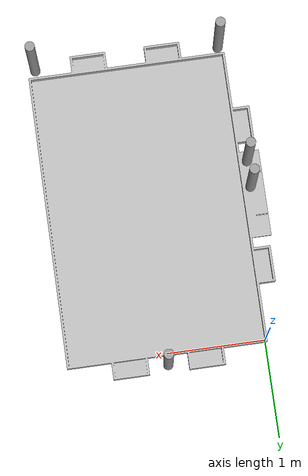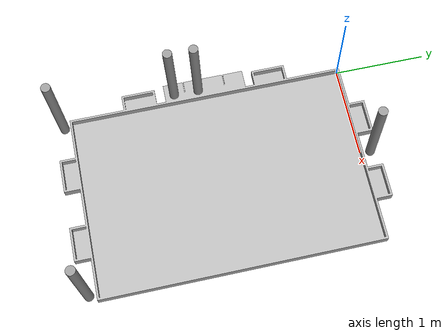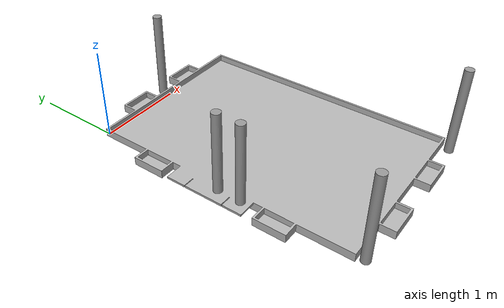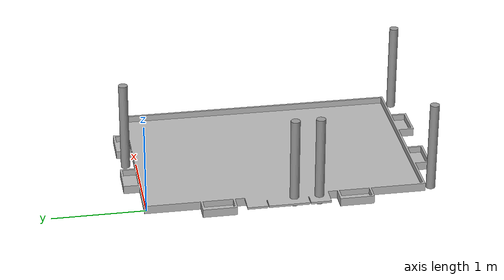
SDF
<sdf version="1.7">
 <world name="default">
  <light name="sun" type="directional">
   <pose>0 0 10 0 -0 0</pose>
   <diffuse>0.8 0.8 0.8 1</diffuse>
   <specular>0.2 0.2 0.2 1</specular>
   <attenuation>
    <range>1000</range>
    <constant>0.9</constant>
    <linear>0.01</linear>
    <quadratic>0.001</quadratic>
   </attenuation>
   <direction>-0.5 0.1 -0.9</direction>
   <spot><inner_angle>0</inner_angle><outer_angle>0</outer_angle><falloff>0</falloff></spot>
  </light>
  <gravity>0 0 -9.8</gravity>
  <magnetic_field>6e-06 2.3e-05 -4.2e-05</magnetic_field>
  <atmosphere type="adiabatic"/>
  <physics type="ode">
   <max_step_size>0.001</max_step_size>
   <real_time_factor>1</real_time_factor>
   <real_time_update_rate>1000</real_time_update_rate>
  </physics>
  <scene><ambient>0.4 0.4 0.4 1</ambient><background>0.7 0.7 0.7 1</background><shadows>1</shadows></scene>
  <audio><device>default</device></audio>
  <spherical_coordinates>
   <surface_model>EARTH_WGS84</surface_model>
   <latitude_deg>0</latitude_deg>
   <longitude_deg>0</longitude_deg>
   <elevation>0</elevation>
   <heading_deg>0</heading_deg>
  </spherical_coordinates>
  <model name="Table_2024">
   <static>1</static>
   <link name="link_0">
    <gravity>0</gravity>
    <inertial>
     <inertia>
      <ixx>0.166667</ixx>
      <ixy>0</ixy>
      <ixz>0</ixz>
      <iyy>0.166667</iyy>
      <iyz>0</iyz>
      <izz>0.166667</izz>
     </inertia>
    </inertial>
    <pose>-1 -1 0 0 -0 0</pose>
    <visual name="visual">
     <geometry><mesh><uri>model://Table2024/table2024.dae</uri><scale>1 1 1</scale></mesh></geometry>
     <material>
      <lighting>1</lighting>
      <script>
       <uri>model://Table2024/materials/scripts</uri>
       <uri>model://Table2024/materials/textures</uri>
       <name>tableMat/Diffuse</name>
       <name>Gazebo/Grey</name>
      </script>
      <shader type="pixel"/>
     </material>
    </visual>
    <collision name="collision">
     <geometry><mesh><uri>model://Table2024/table2024.dae</uri><scale>1 1 1</scale></mesh></geometry>
     <surface>
      <friction>
       <ode><mu>1</mu><mu2>1</mu2><fdir1>0 0 0</fdir1><slip1>0</slip1><slip2>0</slip2></ode>
       <torsional>
        <coefficient>1</coefficient>
        <patch_radius>0</patch_radius>
        <surface_radius>0</surface_radius>
        <use_patch_radius>1</use_patch_radius>
        <ode><slip>0</slip></ode>
       </torsional>
      </friction>
      <bounce><restitution_coefficient>0</restitution_coefficient><threshold>1e+06</threshold></bounce>
      <contact>
       <collide_without_contact>0</collide_without_contact>
       <collide_without_contact_bitmask>1</collide_without_contact_bitmask>
       <collide_bitmask>1</collide_bitmask>
       <ode>
        <soft_cfm>0</soft_cfm>
        <soft_erp>0.2</soft_erp>
        <kp>1e+13</kp>
        <kd>1</kd>
        <max_vel>0.01</max_vel>
        <min_depth>0</min_depth>
       </ode>
       <bullet>
        <split_impulse>1</split_impulse>
        <split_impulse_penetration_threshold>-0.01</split_impulse_penetration_threshold>
        <soft_cfm>0</soft_cfm>
        <soft_erp>0.2</soft_erp>
        <kp>1e+13</kp>
        <kd>1</kd>
       </bullet>
      </contact>
     </surface>
    </collision>
   </link>
   <static>0</static>
   <pose>1 1 0 0 -0 0</pose>
  </model>
  <model name="100mm_cylinder">
   <static>1</static>
   <link name="link">
    <inertial>
     <mass>1</mass>
     <inertia><ixx>0.145833</ixx><ixy>0</ixy><ixz>0</ixz><iyy>0.145833</iyy><iyz>0</iyz><izz>0.125</izz></inertia>
    </inertial>
    <gravity>0</gravity>
    <visual name="visual">
     <geometry><cylinder><radius>0.05</radius><length>1</length></cylinder></geometry>
     <material>
      <script><name>Gazebo/Grey</name><uri>file://media/materials/scripts/gazebo.material</uri></script>
      <shader type="pixel"><normal_map>__default__</normal_map></shader>
      <ambient>0.3 0.3 0.3 1</ambient>
      <diffuse>0.7 0.7 0.7 1</diffuse>
      <specular>0.01 0.01 0.01 1</specular>
      <emissive>0 0 0 1</emissive>
     </material>
    </visual>
    <collision name="collision">
     <geometry><cylinder><radius>0.05</radius><length>1</length></cylinder></geometry>
     <surface>
      <friction>
       <ode><mu>1</mu><mu2>1</mu2><fdir1>0 0 0</fdir1><slip1>0</slip1><slip2>0</slip2></ode>
       <torsional>
        <coefficient>1</coefficient>
        <patch_radius>0</patch_radius>
        <surface_radius>0</surface_radius>
        <use_patch_radius>1</use_patch_radius>
        <ode><slip>0</slip></ode>
       </torsional>
      </friction>
      <bounce><restitution_coefficient>0</restitution_coefficient><threshold>1e+06</threshold></bounce>
      <contact>
       <collide_without_contact>0</collide_without_contact>
       <collide_without_contact_bitmask>1</collide_without_contact_bitmask>
       <collide_bitmask>1</collide_bitmask>
       <ode>
        <soft_cfm>0</soft_cfm>
        <soft_erp>0.2</soft_erp>
        <kp>1e+13</kp>
        <kd>1</kd>
        <max_vel>0.01</max_vel>
        <min_depth>0</min_depth>
       </ode>
       <bullet>
        <split_impulse>1</split_impulse>
        <split_impulse_penetration_threshold>-0.01</split_impulse_penetration_threshold>
        <soft_cfm>0</soft_cfm>
        <soft_erp>0.2</soft_erp>
        <kp>1e+13</kp>
        <kd>1</kd>
       </bullet>
      </contact>
     </surface>
    </collision>
   </link>
   <static>0</static>
   <pose>1.94352 -3.106 0.487016 0 -0 0</pose>
  </model>
  <model name="100mm_cylinder_clone">
   <static>1</static>
   <link name="link">
    <inertial>
     <mass>1</mass>
     <inertia><ixx>0.145833</ixx><ixy>0</ixy><ixz>0</ixz><iyy>0.145833</iyy><iyz>0</iyz><izz>0.125</izz></inertia>
    </inertial>
    <gravity>0</gravity>
    <visual name="visual">
     <geometry><cylinder><radius>0.05</radius><length>1</length></cylinder></geometry>
     <material>
      <script><name>Gazebo/Grey</name><uri>file://media/materials/scripts/gazebo.material</uri></script>
      <shader type="pixel"><normal_map>__default__</normal_map></shader>
      <ambient>0.3 0.3 0.3 1</ambient>
      <diffuse>0.7 0.7 0.7 1</diffuse>
      <specular>0.01 0.01 0.01 1</specular>
      <emissive>0 0 0 1</emissive>
     </material>
    </visual>
    <collision name="collision">
     <geometry><cylinder><radius>0.05</radius><length>1</length></cylinder></geometry>
     <surface>
      <friction>
       <ode><mu>1</mu><mu2>1</mu2><fdir1>0 0 0</fdir1><slip1>0</slip1><slip2>0</slip2></ode>
       <torsional>
        <coefficient>1</coefficient>
        <patch_radius>0</patch_radius>
        <surface_radius>0</surface_radius>
        <use_patch_radius>1</use_patch_radius>
        <ode><slip>0</slip></ode>
       </torsional>
      </friction>
      <bounce><restitution_coefficient>0</restitution_coefficient><threshold>1e+06</threshold></bounce>
      <contact>
       <collide_without_contact>0</collide_without_contact>
       <collide_without_contact_bitmask>1</collide_without_contact_bitmask>
       <collide_bitmask>1</collide_bitmask>
       <ode>
        <soft_cfm>0</soft_cfm>
        <soft_erp>0.2</soft_erp>
        <kp>1e+13</kp>
        <kd>1</kd>
        <max_vel>0.01</max_vel>
        <min_depth>0</min_depth>
       </ode>
       <bullet>
        <split_impulse>1</split_impulse>
        <split_impulse_penetration_threshold>-0.01</split_impulse_penetration_threshold>
        <soft_cfm>0</soft_cfm>
        <soft_erp>0.2</soft_erp>
        <kp>1e+13</kp>
        <kd>1</kd>
       </bullet>
      </contact>
     </surface>
    </collision>
   </link>
   <static>0</static>
   <pose>0.035001 -3.09424 0.487016 0 -0 0</pose>
  </model>
  <model name="100mm_cylinder_clone_0">
   <static>1</static>
   <link name="link">
    <inertial>
     <mass>1</mass>
     <inertia><ixx>0.145833</ixx><ixy>0</ixy><ixz>0</ixz><iyy>0.145833</iyy><iyz>0</iyz><izz>0.125</izz></inertia>
    </inertial>
    <gravity>0</gravity>
    <visual name="visual">
     <geometry><cylinder><radius>0.05</radius><length>1</length></cylinder></geometry>
     <material>
      <script><name>Gazebo/Grey</name><uri>file://media/materials/scripts/gazebo.material</uri></script>
      <shader type="pixel"><normal_map>__default__</normal_map></shader>
      <ambient>0.3 0.3 0.3 1</ambient>
      <diffuse>0.7 0.7 0.7 1</diffuse>
      <specular>0.01 0.01 0.01 1</specular>
      <emissive>0 0 0 1</emissive>
     </material>
    </visual>
    <collision name="collision">
     <geometry><cylinder><radius>0.05</radius><length>1</length></cylinder></geometry>
     <surface>
      <friction>
       <ode><mu>1</mu><mu2>1</mu2><fdir1>0 0 0</fdir1><slip1>0</slip1><slip2>0</slip2></ode>
       <torsional>
        <coefficient>1</coefficient>
        <patch_radius>0</patch_radius>
        <surface_radius>0</surface_radius>
        <use_patch_radius>1</use_patch_radius>
        <ode><slip>0</slip></ode>
       </torsional>
      </friction>
      <bounce><restitution_coefficient>0</restitution_coefficient><threshold>1e+06</threshold></bounce>
      <contact>
       <collide_without_contact>0</collide_without_contact>
       <collide_without_contact_bitmask>1</collide_without_contact_bitmask>
       <collide_bitmask>1</collide_bitmask>
       <ode>
        <soft_cfm>0</soft_cfm>
        <soft_erp>0.2</soft_erp>
        <kp>1e+13</kp>
        <kd>1</kd>
        <max_vel>0.01</max_vel>
        <min_depth>0</min_depth>
       </ode>
       <bullet>
        <split_impulse>1</split_impulse>
        <split_impulse_penetration_threshold>-0.01</split_impulse_penetration_threshold>
        <soft_cfm>0</soft_cfm>
        <soft_erp>0.2</soft_erp>
        <kp>1e+13</kp>
        <kd>1</kd>
       </bullet>
      </contact>
     </surface>
    </collision>
   </link>
   <static>0</static>
   <pose>1.00382 0.114013 0.487016 0 -0 0</pose>
  </model>
  <model name="100mm_cylinder_clone_1">
   <static>1</static>
   <link name="link">
    <inertial>
     <mass>1</mass>
     <inertia><ixx>0.145833</ixx><ixy>0</ixy><ixz>0</ixz><iyy>0.145833</iyy><iyz>0</iyz><izz>0.125</izz></inertia>
    </inertial>
    <gravity>0</gravity>
    <visual name="visual">
     <geometry><cylinder><radius>0.05</radius><length>1</length></cylinder></geometry>
     <material>
      <script><name>Gazebo/Grey</name><uri>file://media/materials/scripts/gazebo.material</uri></script>
      <shader type="pixel"><normal_map>__default__</normal_map></shader>
      <ambient>0.3 0.3 0.3 1</ambient>
      <diffuse>0.7 0.7 0.7 1</diffuse>
      <specular>0.01 0.01 0.01 1</specular>
      <emissive>0 0 0 1</emissive>
     </material>
    </visual>
    <collision name="collision">
     <geometry><cylinder><radius>0.05</radius><length>1</length></cylinder></geometry>
     <surface>
      <friction>
       <ode><mu>1</mu><mu2>1</mu2><fdir1>0 0 0</fdir1><slip1>0</slip1><slip2>0</slip2></ode>
       <torsional>
        <coefficient>1</coefficient>
        <patch_radius>0</patch_radius>
        <surface_radius>0</surface_radius>
        <use_patch_radius>1</use_patch_radius>
        <ode><slip>0</slip></ode>
       </torsional>
      </friction>
      <bounce><restitution_coefficient>0</restitution_coefficient><threshold>1e+06</threshold></bounce>
      <contact>
       <collide_without_contact>0</collide_without_contact>
       <collide_without_contact_bitmask>1</collide_without_contact_bitmask>
       <collide_bitmask>1</collide_bitmask>
       <ode>
        <soft_cfm>0</soft_cfm>
        <soft_erp>0.2</soft_erp>
        <kp>1e+13</kp>
        <kd>1</kd>
        <max_vel>0.01</max_vel>
        <min_depth>0</min_depth>
       </ode>
       <bullet>
        <split_impulse>1</split_impulse>
        <split_impulse_penetration_threshold>-0.01</split_impulse_penetration_threshold>
        <soft_cfm>0</soft_cfm>
        <soft_erp>0.2</soft_erp>
        <kp>1e+13</kp>
        <kd>1</kd>
       </bullet>
      </contact>
     </surface>
    </collision>
   </link>
   <static>0</static>
   <pose>-0.085755 -1.84496 0.487016 0 -0 0</pose>
  </model>
  <model name="100mm_cylinder_clone_2">
   <static>1</static>
   <link name="link">
    <inertial>
     <mass>1</mass>
     <inertia><ixx>0.145833</ixx><ixy>0</ixy><ixz>0</ixz><iyy>0.145833</iyy><iyz>0</iyz><izz>0.125</izz></inertia>
    </inertial>
    <gravity>0</gravity>
    <visual name="visual">
     <geometry><cylinder><radius>0.05</radius><length>1</length></cylinder></geometry>
     <material>
      <script><name>Gazebo/Grey</name><uri>file://media/materials/scripts/gazebo.material</uri></script>
      <shader type="pixel"><normal_map>__default__</normal_map></shader>
      <ambient>0.3 0.3 0.3 1</ambient>
      <diffuse>0.7 0.7 0.7 1</diffuse>
      <specular>0.01 0.01 0.01 1</specular>
      <emissive>0 0 0 1</emissive>
     </material>
    </visual>
    <collision name="collision">
     <geometry><cylinder><radius>0.05</radius><length>1</length></cylinder></geometry>
     <surface>
      <friction>
       <ode><mu>1</mu><mu2>1</mu2><fdir1>0 0 0</fdir1><slip1>0</slip1><slip2>0</slip2></ode>
       <torsional>
        <coefficient>1</coefficient>
        <patch_radius>0</patch_radius>
        <surface_radius>0</surface_radius>
        <use_patch_radius>1</use_patch_radius>
        <ode><slip>0</slip></ode>
       </torsional>
      </friction>
      <bounce><restitution_coefficient>0</restitution_coefficient><threshold>1e+06</threshold></bounce>
      <contact>
       <collide_without_contact>0</collide_without_contact>
       <collide_without_contact_bitmask>1</collide_without_contact_bitmask>
       <collide_bitmask>1</collide_bitmask>
       <ode>
        <soft_cfm>0</soft_cfm>
        <soft_erp>0.2</soft_erp>
        <kp>1e+13</kp>
        <kd>1</kd>
        <max_vel>0.01</max_vel>
        <min_depth>0</min_depth>
       </ode>
       <bullet>
        <split_impulse>1</split_impulse>
        <split_impulse_penetration_threshold>-0.01</split_impulse_penetration_threshold>
        <soft_cfm>0</soft_cfm>
        <soft_erp>0.2</soft_erp>
        <kp>1e+13</kp>
        <kd>1</kd>
       </bullet>
      </contact>
     </surface>
    </collision>
   </link>
   <static>0</static>
   <pose>-0.082824 -1.57535 0.487016 0 -0 0</pose>
  </model>
 </world>
</sdf>
